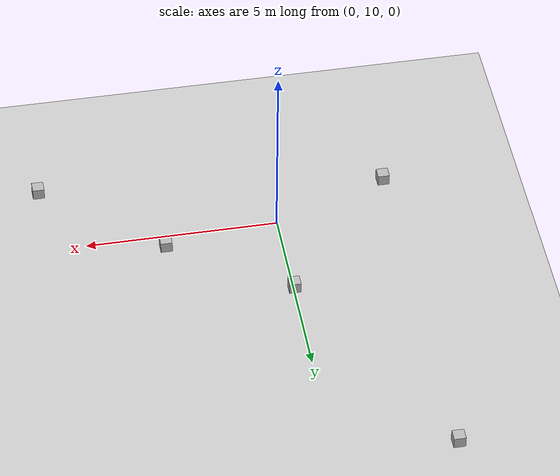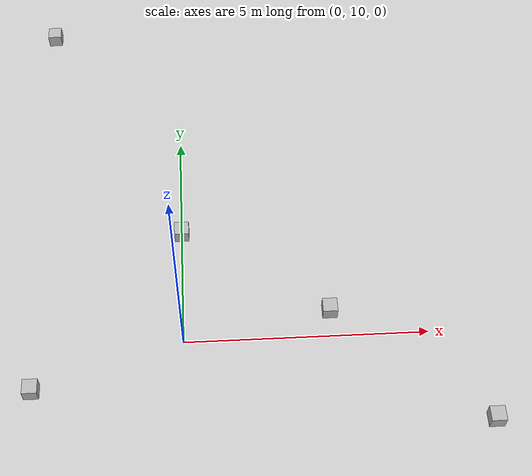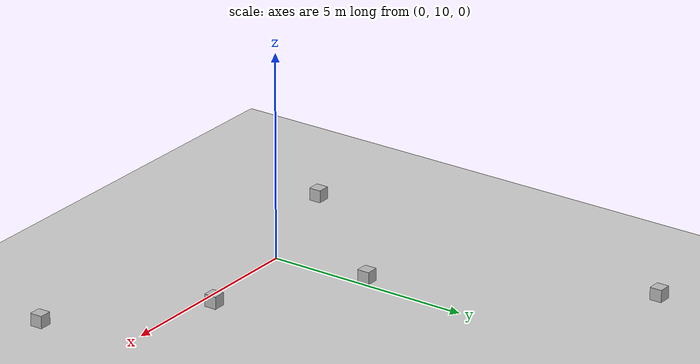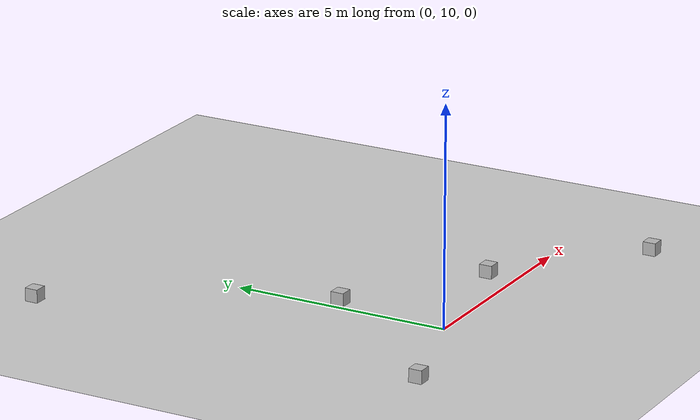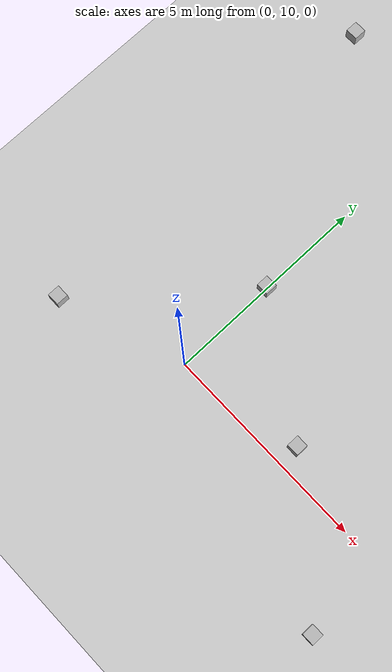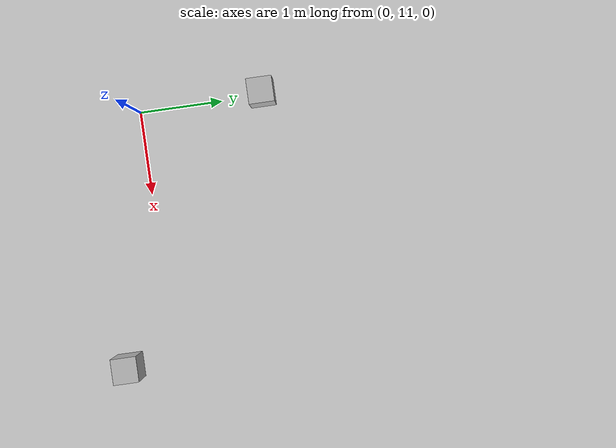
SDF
<sdf version="1.5">
 <world name="default">
  <include><uri>model://sun</uri></include>
  <include><uri>model://ground_plane</uri></include>
  <include><name>cube</name><uri>model://cube</uri><static>true</static><pose>0 0 0.01 0 0 0</pose></include>
 </world>
</sdf>

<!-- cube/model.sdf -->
<sdf version="1.5">
    <model name="cube">
        <static>true</static>
        <link name="link">
            <collision name="collision1">
                <pose>0 12.5 0.1 0 0 0</pose>
                <geometry>
                    <mesh>
                        <uri>model://cube/meshes/cube.dae</uri>
                    </mesh>
                </geometry>
            </collision>
            <visual name="visual1">

              <pose>0 12.5 0.1 0 0 0</pose>
              <geometry>
              <mesh>
                 <uri>model://cube/meshes/cube_green.dae</uri>
              </mesh>
              </geometry>

              <material>
                  <script>
                      <uri>model://cube/materials/scripts</uri>
                      <uri>model://cube/materials/textures</uri>
                      <name>cubeMat/Diffuse</name>
                  </script>
              </material>
             </visual>

             <collision name="collision2">
                <pose>3 10.5 0.1 0 0 0</pose>
                <geometry>
                    <mesh>
                        <uri>model://cube/meshes/cube.dae</uri>
                    </mesh>
                </geometry>
            </collision>
            <visual name="visual2">

              <pose>3 10.5 0.1 0 0 0</pose>
              <geometry>
              <mesh>
                 <uri>model://cube/meshes/cube_green.dae</uri>
              </mesh>
              </geometry>

              <material>
                  <script>
                      <uri>model://cube/materials/scripts</uri>
                      <uri>model://cube/materials/textures</uri>
                      <name>cubeMat/Diffuse</name>
                  </script>
              </material>
             </visual>

             <collision name="collision3">
                <pose>-3 9 0.1 0 0 0</pose>
                <geometry>
                    <mesh>
                        <uri>model://cube/meshes/cube.dae</uri>
                    </mesh>
                </geometry>
            </collision>
            <visual name="visual3">

              <pose>-3 9 0.1 0 0 0</pose>
              <geometry>
              <mesh>
                 <uri>model://cube/meshes/cube_green.dae</uri>
              </mesh>
              </geometry>

              <material>
                  <script>
                      <uri>model://cube/materials/scripts</uri>
                      <uri>model://cube/materials/textures</uri>
                      <name>cubeMat/Diffuse</name>
                  </script>
              </material>
             </visual>

             <collision name="collision4">
                <pose>6 8 0.1 0 0 0</pose>
                <geometry>
                    <mesh>
                        <uri>model://cube/meshes/cube.dae</uri>
                    </mesh>
                </geometry>
            </collision>
            <visual name="visual4">

              <pose>6 8 0.1 0 0 0</pose>
              <geometry>
              <mesh>
                 <uri>model://cube/meshes/cube_green.dae</uri>
              </mesh>
              </geometry>

              <material>
                  <script>
                      <uri>model://cube/materials/scripts</uri>
                      <uri>model://cube/materials/textures</uri>
                      <name>cubeMat/Diffuse</name>
                  </script>
              </material>
             </visual>

             <collision name="collision5">
                <pose>-3 18.3 0.1 0 0 0</pose>
                <geometry>
                    <mesh>
                        <uri>model://cube/meshes/cube.dae</uri>
                    </mesh>
                </geometry>
            </collision>
            <visual name="visual5">

              <pose>-3 18.3 0.1 0 0 0</pose>
              <geometry>
              <mesh>
                 <uri>model://cube/meshes/cube_green.dae</uri>
              </mesh>
              </geometry>

              <material>
                  <script>
                      <uri>model://cube/materials/scripts</uri>
                      <uri>model://cube/materials/textures</uri>
                      <name>cubeMat/Diffuse</name>
                  </script>
              </material>
             </visual>
        </link>
    </model>
</sdf>
